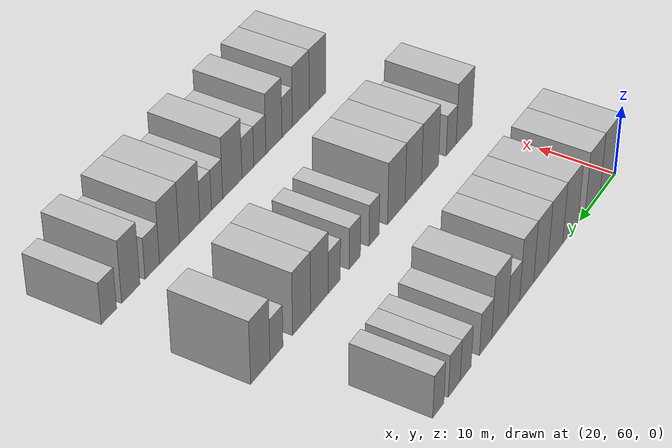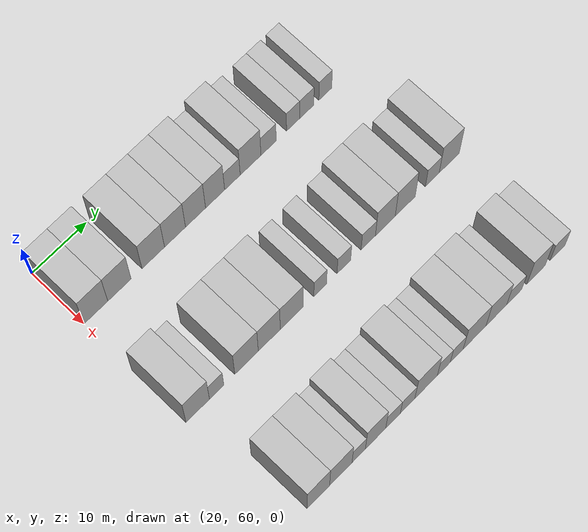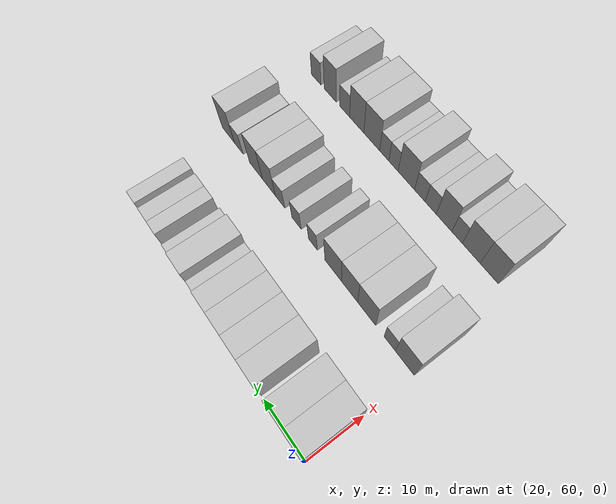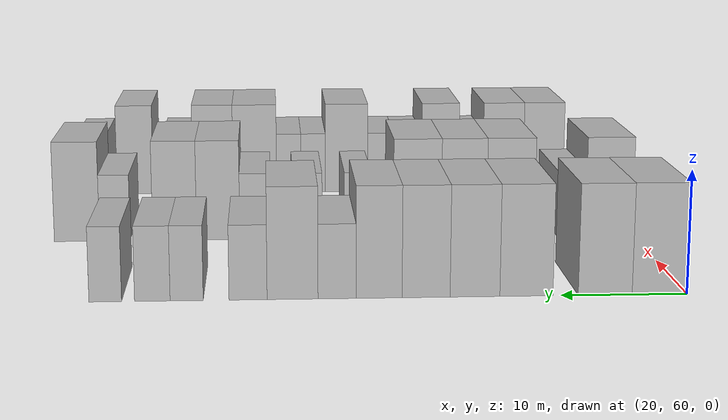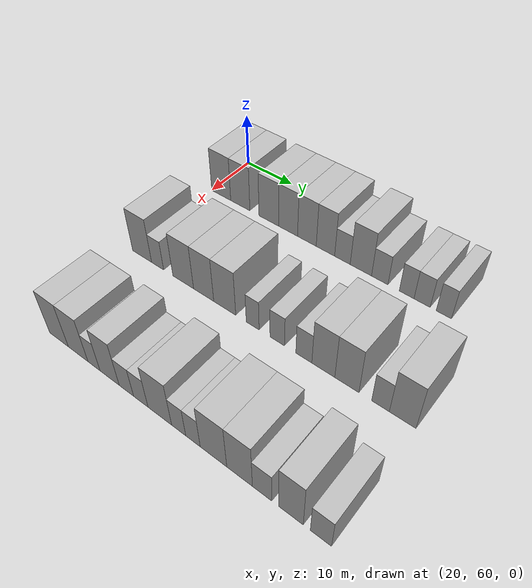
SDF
<sdf version="1.6">
 <world name="default">
  <model name="building_103">
   <static>1</static>
   <pose>25.0000 62.1673 0 0.000000 0.000000 0.000000</pose>
   <link name="link">
    <pose>0 0 4.50 0 0 0</pose>
    <collision name="collision"><geometry><box><size>10.0000 4.3727 9.0000</size></box></geometry></collision>
    <visual name="visual">
     <cast_shadows>0</cast_shadows>
     <geometry><box><size>10.0000 4.3727 9.0000</size></box></geometry>
     <material>
      <script>
       <uri>model://HANNAS_wall/materials/scripts</uri>
       <uri>model://HANNAS_wall/materials/textures</uri>
       <name>vrc/HANNAS_wall</name>
      </script>
     </material>
    </visual>
   </link>
  </model>
  <model name="building_104">
   <static>1</static>
   <pose>25.0000 66.4941 0 0.000000 0.000000 0.000000</pose>
   <link name="link">
    <pose>0 0 4.50 0 0 0</pose>
    <collision name="collision"><geometry><box><size>10.0000 4.2809 9.0000</size></box></geometry></collision>
    <visual name="visual">
     <cast_shadows>0</cast_shadows>
     <geometry><box><size>10.0000 4.2809 9.0000</size></box></geometry>
     <material>
      <script>
       <uri>model://HANNAS_wall/materials/scripts</uri>
       <uri>model://HANNAS_wall/materials/textures</uri>
       <name>vrc/HANNAS_wall</name>
      </script>
     </material>
    </visual>
   </link>
  </model>
  <model name="building_105">
   <static>1</static>
   <pose>25.0000 72.7339 0 0.000000 0.000000 0.000000</pose>
   <link name="link">
    <pose>0 0 4.50 0 0 0</pose>
    <collision name="collision"><geometry><box><size>10.0000 4.1987 9.0000</size></box></geometry></collision>
    <visual name="visual">
     <cast_shadows>0</cast_shadows>
     <geometry><box><size>10.0000 4.1987 9.0000</size></box></geometry>
     <material>
      <script>
       <uri>model://HANNAS_wall/materials/scripts</uri>
       <uri>model://HANNAS_wall/materials/textures</uri>
       <name>vrc/HANNAS_wall</name>
      </script>
     </material>
    </visual>
   </link>
  </model>
  <model name="building_106">
   <static>1</static>
   <pose>25.0000 76.7936 0 0.000000 0.000000 0.000000</pose>
   <link name="link">
    <pose>0 0 4.50 0 0 0</pose>
    <collision name="collision"><geometry><box><size>10.0000 3.9207 9.0000</size></box></geometry></collision>
    <visual name="visual">
     <cast_shadows>0</cast_shadows>
     <geometry><box><size>10.0000 3.9207 9.0000</size></box></geometry>
     <material>
      <script>
       <uri>model://HANNAS_wall/materials/scripts</uri>
       <uri>model://HANNAS_wall/materials/textures</uri>
       <name>vrc/HANNAS_wall</name>
      </script>
     </material>
    </visual>
   </link>
  </model>
  <model name="building_107">
   <static>1</static>
   <pose>25.0000 80.6412 0 0.000000 0.000000 0.000000</pose>
   <link name="link">
    <pose>0 0 4.50 0 0 0</pose>
    <collision name="collision"><geometry><box><size>10.0000 3.7744 9.0000</size></box></geometry></collision>
    <visual name="visual">
     <cast_shadows>0</cast_shadows>
     <geometry><box><size>10.0000 3.7744 9.0000</size></box></geometry>
     <material>
      <script>
       <uri>model://HANNAS_wall/materials/scripts</uri>
       <uri>model://HANNAS_wall/materials/textures</uri>
       <name>vrc/HANNAS_wall</name>
      </script>
     </material>
    </visual>
   </link>
  </model>
  <model name="building_108">
   <static>1</static>
   <pose>25.0000 84.3327 0 0.000000 0.000000 0.000000</pose>
   <link name="link">
    <pose>0 0 4.50 0 0 0</pose>
    <collision name="collision"><geometry><box><size>10.0000 3.6086 9.0000</size></box></geometry></collision>
    <visual name="visual">
     <cast_shadows>0</cast_shadows>
     <geometry><box><size>10.0000 3.6086 9.0000</size></box></geometry>
     <material>
      <script>
       <uri>model://HANNAS_wall/materials/scripts</uri>
       <uri>model://HANNAS_wall/materials/textures</uri>
       <name>vrc/HANNAS_wall</name>
      </script>
     </material>
    </visual>
   </link>
  </model>
  <model name="building_109">
   <static>1</static>
   <pose>25.0000 87.6232 0 0.000000 0.000000 0.000000</pose>
   <link name="link">
    <pose>0 0 3.00 0 0 0</pose>
    <collision name="collision"><geometry><box><size>10.0000 2.9723 6.0000</size></box></geometry></collision>
    <visual name="visual">
     <cast_shadows>0</cast_shadows>
     <geometry><box><size>10.0000 2.9723 6.0000</size></box></geometry>
     <material>
      <script>
       <uri>model://HANNAS_wall/materials/scripts</uri>
       <uri>model://HANNAS_wall/materials/textures</uri>
       <name>vrc/HANNAS_wall</name>
      </script>
     </material>
    </visual>
   </link>
  </model>
  <model name="building_110">
   <static>1</static>
   <pose>25.0000 91.0939 0 0.000000 0.000000 0.000000</pose>
   <link name="link">
    <pose>0 0 4.50 0 0 0</pose>
    <collision name="collision"><geometry><box><size>10.0000 3.9692 9.0000</size></box></geometry></collision>
    <visual name="visual">
     <cast_shadows>0</cast_shadows>
     <geometry><box><size>10.0000 3.9692 9.0000</size></box></geometry>
     <material>
      <script>
       <uri>model://HANNAS_wall/materials/scripts</uri>
       <uri>model://HANNAS_wall/materials/textures</uri>
       <name>vrc/HANNAS_wall</name>
      </script>
     </material>
    </visual>
   </link>
  </model>
  <model name="building_111">
   <static>1</static>
   <pose>25.0000 94.5590 0 0.000000 0.000000 0.000000</pose>
   <link name="link">
    <pose>0 0 3.00 0 0 0</pose>
    <collision name="collision"><geometry><box><size>10.0000 2.9611 6.0000</size></box></geometry></collision>
    <visual name="visual">
     <cast_shadows>0</cast_shadows>
     <geometry><box><size>10.0000 2.9611 6.0000</size></box></geometry>
     <material>
      <script>
       <uri>model://HANNAS_wall/materials/scripts</uri>
       <uri>model://HANNAS_wall/materials/textures</uri>
       <name>vrc/HANNAS_wall</name>
      </script>
     </material>
    </visual>
   </link>
  </model>
  <model name="building_112">
   <static>1</static>
   <pose>25.0000 99.3228 0 0.000000 0.000000 0.000000</pose>
   <link name="link">
    <pose>0 0 3.00 0 0 0</pose>
    <collision name="collision"><geometry><box><size>10.0000 2.5666 6.0000</size></box></geometry></collision>
    <visual name="visual">
     <cast_shadows>0</cast_shadows>
     <geometry><box><size>10.0000 2.5666 6.0000</size></box></geometry>
     <material>
      <script>
       <uri>model://HANNAS_wall/materials/scripts</uri>
       <uri>model://HANNAS_wall/materials/textures</uri>
       <name>vrc/HANNAS_wall</name>
      </script>
     </material>
    </visual>
   </link>
  </model>
  <model name="building_113">
   <static>1</static>
   <pose>25.0000 101.9807 0 0.000000 0.000000 0.000000</pose>
   <link name="link">
    <pose>0 0 3.00 0 0 0</pose>
    <collision name="collision"><geometry><box><size>10.0000 2.7491 6.0000</size></box></geometry></collision>
    <visual name="visual">
     <cast_shadows>0</cast_shadows>
     <geometry><box><size>10.0000 2.7491 6.0000</size></box></geometry>
     <material>
      <script>
       <uri>model://HANNAS_wall/materials/scripts</uri>
       <uri>model://HANNAS_wall/materials/textures</uri>
       <name>vrc/HANNAS_wall</name>
      </script>
     </material>
    </visual>
   </link>
  </model>
  <model name="building_114">
   <static>1</static>
   <pose>25.0000 105.6142 0 0.000000 0.000000 0.000000</pose>
   <link name="link">
    <pose>0 0 3.00 0 0 0</pose>
    <collision name="collision"><geometry><box><size>10.0000 2.5178 6.0000</size></box></geometry></collision>
    <visual name="visual">
     <cast_shadows>0</cast_shadows>
     <geometry><box><size>10.0000 2.5178 6.0000</size></box></geometry>
     <material>
      <script>
       <uri>model://HANNAS_wall/materials/scripts</uri>
       <uri>model://HANNAS_wall/materials/textures</uri>
       <name>vrc/HANNAS_wall</name>
      </script>
     </material>
    </visual>
   </link>
  </model>
  <model name="building_269">
   <static>1</static>
   <pose>44.0000 62.1444 0 0.000000 0.000000 0.000000</pose>
   <link name="link">
    <pose>0 0 4.50 0 0 0</pose>
    <collision name="collision"><geometry><box><size>10.0000 4.2817 9.0000</size></box></geometry></collision>
    <visual name="visual">
     <cast_shadows>0</cast_shadows>
     <geometry><box><size>10.0000 4.2817 9.0000</size></box></geometry>
     <material>
      <script>
       <uri>model://HANNAS_wall/materials/scripts</uri>
       <uri>model://HANNAS_wall/materials/textures</uri>
       <name>vrc/HANNAS_wall</name>
      </script>
     </material>
    </visual>
   </link>
  </model>
  <model name="building_270">
   <static>1</static>
   <pose>44.0000 65.6032 0 0.000000 0.000000 0.000000</pose>
   <link name="link">
    <pose>0 0 3.00 0 0 0</pose>
    <collision name="collision"><geometry><box><size>10.0000 2.6360 6.0000</size></box></geometry></collision>
    <visual name="visual">
     <cast_shadows>0</cast_shadows>
     <geometry><box><size>10.0000 2.6360 6.0000</size></box></geometry>
     <material>
      <script>
       <uri>model://HANNAS_wall/materials/scripts</uri>
       <uri>model://HANNAS_wall/materials/textures</uri>
       <name>vrc/HANNAS_wall</name>
      </script>
     </material>
    </visual>
   </link>
  </model>
  <model name="building_271">
   <static>1</static>
   <pose>44.0000 71.0985 0 0.000000 0.000000 0.000000</pose>
   <link name="link">
    <pose>0 0 4.50 0 0 0</pose>
    <collision name="collision"><geometry><box><size>10.0000 4.3546 9.0000</size></box></geometry></collision>
    <visual name="visual">
     <cast_shadows>0</cast_shadows>
     <geometry><box><size>10.0000 4.3546 9.0000</size></box></geometry>
     <material>
      <script>
       <uri>model://HANNAS_wall/materials/scripts</uri>
       <uri>model://HANNAS_wall/materials/textures</uri>
       <name>vrc/HANNAS_wall</name>
      </script>
     </material>
    </visual>
   </link>
  </model>
  <model name="building_272">
   <static>1</static>
   <pose>44.0000 75.3268 0 0.000000 0.000000 0.000000</pose>
   <link name="link">
    <pose>0 0 4.50 0 0 0</pose>
    <collision name="collision"><geometry><box><size>10.0000 4.1020 9.0000</size></box></geometry></collision>
    <visual name="visual">
     <cast_shadows>0</cast_shadows>
     <geometry><box><size>10.0000 4.1020 9.0000</size></box></geometry>
     <material>
      <script>
       <uri>model://HANNAS_wall/materials/scripts</uri>
       <uri>model://HANNAS_wall/materials/textures</uri>
       <name>vrc/HANNAS_wall</name>
      </script>
     </material>
    </visual>
   </link>
  </model>
  <model name="building_273">
   <static>1</static>
   <pose>44.0000 79.5381 0 0.000000 0.000000 0.000000</pose>
   <link name="link">
    <pose>0 0 4.50 0 0 0</pose>
    <collision name="collision"><geometry><box><size>10.0000 4.3207 9.0000</size></box></geometry></collision>
    <visual name="visual">
     <cast_shadows>0</cast_shadows>
     <geometry><box><size>10.0000 4.3207 9.0000</size></box></geometry>
     <material>
      <script>
       <uri>model://HANNAS_wall/materials/scripts</uri>
       <uri>model://HANNAS_wall/materials/textures</uri>
       <name>vrc/HANNAS_wall</name>
      </script>
     </material>
    </visual>
   </link>
  </model>
  <model name="building_274">
   <static>1</static>
   <pose>44.0000 84.9060 0 0.000000 0.000000 0.000000</pose>
   <link name="link">
    <pose>0 0 3.00 0 0 0</pose>
    <collision name="collision"><geometry><box><size>10.0000 2.4150 6.0000</size></box></geometry></collision>
    <visual name="visual">
     <cast_shadows>0</cast_shadows>
     <geometry><box><size>10.0000 2.4150 6.0000</size></box></geometry>
     <material>
      <script>
       <uri>model://HANNAS_wall/materials/scripts</uri>
       <uri>model://HANNAS_wall/materials/textures</uri>
       <name>vrc/HANNAS_wall</name>
      </script>
     </material>
    </visual>
   </link>
  </model>
  <model name="building_275">
   <static>1</static>
   <pose>44.0000 89.4211 0 0.000000 0.000000 0.000000</pose>
   <link name="link">
    <pose>0 0 3.00 0 0 0</pose>
    <collision name="collision"><geometry><box><size>10.0000 2.6153 6.0000</size></box></geometry></collision>
    <visual name="visual">
     <cast_shadows>0</cast_shadows>
     <geometry><box><size>10.0000 2.6153 6.0000</size></box></geometry>
     <material>
      <script>
       <uri>model://HANNAS_wall/materials/scripts</uri>
       <uri>model://HANNAS_wall/materials/textures</uri>
       <name>vrc/HANNAS_wall</name>
      </script>
     </material>
    </visual>
   </link>
  </model>
  <model name="building_276">
   <static>1</static>
   <pose>44.0000 94.1112 0 0.000000 0.000000 0.000000</pose>
   <link name="link">
    <pose>0 0 3.00 0 0 0</pose>
    <collision name="collision"><geometry><box><size>10.0000 2.7648 6.0000</size></box></geometry></collision>
    <visual name="visual">
     <cast_shadows>0</cast_shadows>
     <geometry><box><size>10.0000 2.7648 6.0000</size></box></geometry>
     <material>
      <script>
       <uri>model://HANNAS_wall/materials/scripts</uri>
       <uri>model://HANNAS_wall/materials/textures</uri>
       <name>vrc/HANNAS_wall</name>
      </script>
     </material>
    </visual>
   </link>
  </model>
  <model name="building_277">
   <static>1</static>
   <pose>44.0000 97.4187 0 0.000000 0.000000 0.000000</pose>
   <link name="link">
    <pose>0 0 4.50 0 0 0</pose>
    <collision name="collision"><geometry><box><size>10.0000 3.8502 9.0000</size></box></geometry></collision>
    <visual name="visual">
     <cast_shadows>0</cast_shadows>
     <geometry><box><size>10.0000 3.8502 9.0000</size></box></geometry>
     <material>
      <script>
       <uri>model://HANNAS_wall/materials/scripts</uri>
       <uri>model://HANNAS_wall/materials/textures</uri>
       <name>vrc/HANNAS_wall</name>
      </script>
     </material>
    </visual>
   </link>
  </model>
  <model name="building_278">
   <static>1</static>
   <pose>44.0000 101.3003 0 0.000000 0.000000 0.000000</pose>
   <link name="link">
    <pose>0 0 4.50 0 0 0</pose>
    <collision name="collision"><geometry><box><size>10.0000 3.9130 9.0000</size></box></geometry></collision>
    <visual name="visual">
     <cast_shadows>0</cast_shadows>
     <geometry><box><size>10.0000 3.9130 9.0000</size></box></geometry>
     <material>
      <script>
       <uri>model://HANNAS_wall/materials/scripts</uri>
       <uri>model://HANNAS_wall/materials/textures</uri>
       <name>vrc/HANNAS_wall</name>
      </script>
     </material>
    </visual>
   </link>
  </model>
  <model name="building_279">
   <static>1</static>
   <pose>44.0000 106.6169 0 0.000000 0.000000 0.000000</pose>
   <link name="link">
    <pose>0 0 3.00 0 0 0</pose>
    <collision name="collision"><geometry><box><size>10.0000 2.7202 6.0000</size></box></geometry></collision>
    <visual name="visual">
     <cast_shadows>0</cast_shadows>
     <geometry><box><size>10.0000 2.7202 6.0000</size></box></geometry>
     <material>
      <script>
       <uri>model://HANNAS_wall/materials/scripts</uri>
       <uri>model://HANNAS_wall/materials/textures</uri>
       <name>vrc/HANNAS_wall</name>
      </script>
     </material>
    </visual>
   </link>
  </model>
  <model name="building_280">
   <static>1</static>
   <pose>44.0000 109.9729 0 0.000000 0.000000 0.000000</pose>
   <link name="link">
    <pose>0 0 4.50 0 0 0</pose>
    <collision name="collision"><geometry><box><size>10.0000 3.9918 9.0000</size></box></geometry></collision>
    <visual name="visual">
     <cast_shadows>0</cast_shadows>
     <geometry><box><size>10.0000 3.9918 9.0000</size></box></geometry>
     <material>
      <script>
       <uri>model://HANNAS_wall/materials/scripts</uri>
       <uri>model://HANNAS_wall/materials/textures</uri>
       <name>vrc/HANNAS_wall</name>
      </script>
     </material>
    </visual>
   </link>
  </model>
  <model name="building_446">
   <static>1</static>
   <pose>63.0000 64.8793 0 0.000000 0.000000 0.000000</pose>
   <link name="link">
    <pose>0 0 4.50 0 0 0</pose>
    <collision name="collision"><geometry><box><size>10.0000 4.1039 9.0000</size></box></geometry></collision>
    <visual name="visual">
     <cast_shadows>0</cast_shadows>
     <geometry><box><size>10.0000 4.1039 9.0000</size></box></geometry>
     <material>
      <script>
       <uri>model://HANNAS_wall/materials/scripts</uri>
       <uri>model://HANNAS_wall/materials/textures</uri>
       <name>vrc/HANNAS_wall</name>
      </script>
     </material>
    </visual>
   </link>
  </model>
  <model name="building_447">
   <static>1</static>
   <pose>63.0000 68.9979 0 0.000000 0.000000 0.000000</pose>
   <link name="link">
    <pose>0 0 4.50 0 0 0</pose>
    <collision name="collision"><geometry><box><size>10.0000 4.1334 9.0000</size></box></geometry></collision>
    <visual name="visual">
     <cast_shadows>0</cast_shadows>
     <geometry><box><size>10.0000 4.1334 9.0000</size></box></geometry>
     <material>
      <script>
       <uri>model://HANNAS_wall/materials/scripts</uri>
       <uri>model://HANNAS_wall/materials/textures</uri>
       <name>vrc/HANNAS_wall</name>
      </script>
     </material>
    </visual>
   </link>
  </model>
  <model name="building_448">
   <static>1</static>
   <pose>63.0000 72.3037 0 0.000000 0.000000 0.000000</pose>
   <link name="link">
    <pose>0 0 3.00 0 0 0</pose>
    <collision name="collision"><geometry><box><size>10.0000 2.4780 6.0000</size></box></geometry></collision>
    <visual name="visual">
     <cast_shadows>0</cast_shadows>
     <geometry><box><size>10.0000 2.4780 6.0000</size></box></geometry>
     <material>
      <script>
       <uri>model://HANNAS_wall/materials/scripts</uri>
       <uri>model://HANNAS_wall/materials/textures</uri>
       <name>vrc/HANNAS_wall</name>
      </script>
     </material>
    </visual>
   </link>
  </model>
  <model name="building_449">
   <static>1</static>
   <pose>63.0000 75.4395 0 0.000000 0.000000 0.000000</pose>
   <link name="link">
    <pose>0 0 4.50 0 0 0</pose>
    <collision name="collision"><geometry><box><size>10.0000 3.7937 9.0000</size></box></geometry></collision>
    <visual name="visual">
     <cast_shadows>0</cast_shadows>
     <geometry><box><size>10.0000 3.7937 9.0000</size></box></geometry>
     <material>
      <script>
       <uri>model://HANNAS_wall/materials/scripts</uri>
       <uri>model://HANNAS_wall/materials/textures</uri>
       <name>vrc/HANNAS_wall</name>
      </script>
     </material>
    </visual>
   </link>
  </model>
  <model name="building_450">
   <static>1</static>
   <pose>63.0000 78.7199 0 0.000000 0.000000 0.000000</pose>
   <link name="link">
    <pose>0 0 3.00 0 0 0</pose>
    <collision name="collision"><geometry><box><size>10.0000 2.7670 6.0000</size></box></geometry></collision>
    <visual name="visual">
     <cast_shadows>0</cast_shadows>
     <geometry><box><size>10.0000 2.7670 6.0000</size></box></geometry>
     <material>
      <script>
       <uri>model://HANNAS_wall/materials/scripts</uri>
       <uri>model://HANNAS_wall/materials/textures</uri>
       <name>vrc/HANNAS_wall</name>
      </script>
     </material>
    </visual>
   </link>
  </model>
  <model name="building_451">
   <static>1</static>
   <pose>63.0000 81.4618 0 0.000000 0.000000 0.000000</pose>
   <link name="link">
    <pose>0 0 3.00 0 0 0</pose>
    <collision name="collision"><geometry><box><size>10.0000 2.7170 6.0000</size></box></geometry></collision>
    <visual name="visual">
     <cast_shadows>0</cast_shadows>
     <geometry><box><size>10.0000 2.7170 6.0000</size></box></geometry>
     <material>
      <script>
       <uri>model://HANNAS_wall/materials/scripts</uri>
       <uri>model://HANNAS_wall/materials/textures</uri>
       <name>vrc/HANNAS_wall</name>
      </script>
     </material>
    </visual>
   </link>
  </model>
  <model name="building_452">
   <static>1</static>
   <pose>63.0000 84.9643 0 0.000000 0.000000 0.000000</pose>
   <link name="link">
    <pose>0 0 4.50 0 0 0</pose>
    <collision name="collision"><geometry><box><size>10.0000 4.2878 9.0000</size></box></geometry></collision>
    <visual name="visual">
     <cast_shadows>0</cast_shadows>
     <geometry><box><size>10.0000 4.2878 9.0000</size></box></geometry>
     <material>
      <script>
       <uri>model://HANNAS_wall/materials/scripts</uri>
       <uri>model://HANNAS_wall/materials/textures</uri>
       <name>vrc/HANNAS_wall</name>
      </script>
     </material>
    </visual>
   </link>
  </model>
  <model name="building_453">
   <static>1</static>
   <pose>63.0000 88.3450 0 0.000000 0.000000 0.000000</pose>
   <link name="link">
    <pose>0 0 3.00 0 0 0</pose>
    <collision name="collision"><geometry><box><size>10.0000 2.4737 6.0000</size></box></geometry></collision>
    <visual name="visual">
     <cast_shadows>0</cast_shadows>
     <geometry><box><size>10.0000 2.4737 6.0000</size></box></geometry>
     <material>
      <script>
       <uri>model://HANNAS_wall/materials/scripts</uri>
       <uri>model://HANNAS_wall/materials/textures</uri>
       <name>vrc/HANNAS_wall</name>
      </script>
     </material>
    </visual>
   </link>
  </model>
  <model name="building_454">
   <static>1</static>
   <pose>63.0000 90.8206 0 0.000000 0.000000 0.000000</pose>
   <link name="link">
    <pose>0 0 3.00 0 0 0</pose>
    <collision name="collision"><geometry><box><size>10.0000 2.4775 6.0000</size></box></geometry></collision>
    <visual name="visual">
     <cast_shadows>0</cast_shadows>
     <geometry><box><size>10.0000 2.4775 6.0000</size></box></geometry>
     <material>
      <script>
       <uri>model://HANNAS_wall/materials/scripts</uri>
       <uri>model://HANNAS_wall/materials/textures</uri>
       <name>vrc/HANNAS_wall</name>
      </script>
     </material>
    </visual>
   </link>
  </model>
  <model name="building_455">
   <static>1</static>
   <pose>63.0000 94.2594 0 0.000000 0.000000 0.000000</pose>
   <link name="link">
    <pose>0 0 4.50 0 0 0</pose>
    <collision name="collision"><geometry><box><size>10.0000 4.4001 9.0000</size></box></geometry></collision>
    <visual name="visual">
     <cast_shadows>0</cast_shadows>
     <geometry><box><size>10.0000 4.4001 9.0000</size></box></geometry>
     <material>
      <script>
       <uri>model://HANNAS_wall/materials/scripts</uri>
       <uri>model://HANNAS_wall/materials/textures</uri>
       <name>vrc/HANNAS_wall</name>
      </script>
     </material>
    </visual>
   </link>
  </model>
  <model name="building_456">
   <static>1</static>
   <pose>63.0000 98.4944 0 0.000000 0.000000 0.000000</pose>
   <link name="link">
    <pose>0 0 4.50 0 0 0</pose>
    <collision name="collision"><geometry><box><size>10.0000 4.0699 9.0000</size></box></geometry></collision>
    <visual name="visual">
     <cast_shadows>0</cast_shadows>
     <geometry><box><size>10.0000 4.0699 9.0000</size></box></geometry>
     <material>
      <script>
       <uri>model://HANNAS_wall/materials/scripts</uri>
       <uri>model://HANNAS_wall/materials/textures</uri>
       <name>vrc/HANNAS_wall</name>
      </script>
     </material>
    </visual>
   </link>
  </model>
  <model name="building_457">
   <static>1</static>
   <pose>63.0000 102.0103 0 0.000000 0.000000 0.000000</pose>
   <link name="link">
    <pose>0 0 3.00 0 0 0</pose>
    <collision name="collision"><geometry><box><size>10.0000 2.9620 6.0000</size></box></geometry></collision>
    <visual name="visual">
     <cast_shadows>0</cast_shadows>
     <geometry><box><size>10.0000 2.9620 6.0000</size></box></geometry>
     <material>
      <script>
       <uri>model://HANNAS_wall/materials/scripts</uri>
       <uri>model://HANNAS_wall/materials/textures</uri>
       <name>vrc/HANNAS_wall</name>
      </script>
     </material>
    </visual>
   </link>
  </model>
  <model name="building_458">
   <static>1</static>
   <pose>63.0000 106.3024 0 0.000000 0.000000 0.000000</pose>
   <link name="link">
    <pose>0 0 4.50 0 0 0</pose>
    <collision name="collision"><geometry><box><size>10.0000 3.6221 9.0000</size></box></geometry></collision>
    <visual name="visual">
     <cast_shadows>0</cast_shadows>
     <geometry><box><size>10.0000 3.6221 9.0000</size></box></geometry>
     <material>
      <script>
       <uri>model://HANNAS_wall/materials/scripts</uri>
       <uri>model://HANNAS_wall/materials/textures</uri>
       <name>vrc/HANNAS_wall</name>
      </script>
     </material>
    </visual>
   </link>
  </model>
  <model name="building_459">
   <static>1</static>
   <pose>63.0000 110.5969 0 0.000000 0.000000 0.000000</pose>
   <link name="link">
    <pose>0 0 3.00 0 0 0</pose>
    <collision name="collision"><geometry><box><size>10.0000 2.9669 6.0000</size></box></geometry></collision>
    <visual name="visual">
     <cast_shadows>0</cast_shadows>
     <geometry><box><size>10.0000 2.9669 6.0000</size></box></geometry>
     <material>
      <script>
       <uri>model://HANNAS_wall/materials/scripts</uri>
       <uri>model://HANNAS_wall/materials/textures</uri>
       <name>vrc/HANNAS_wall</name>
      </script>
     </material>
    </visual>
   </link>
  </model>
 </world>
</sdf>
